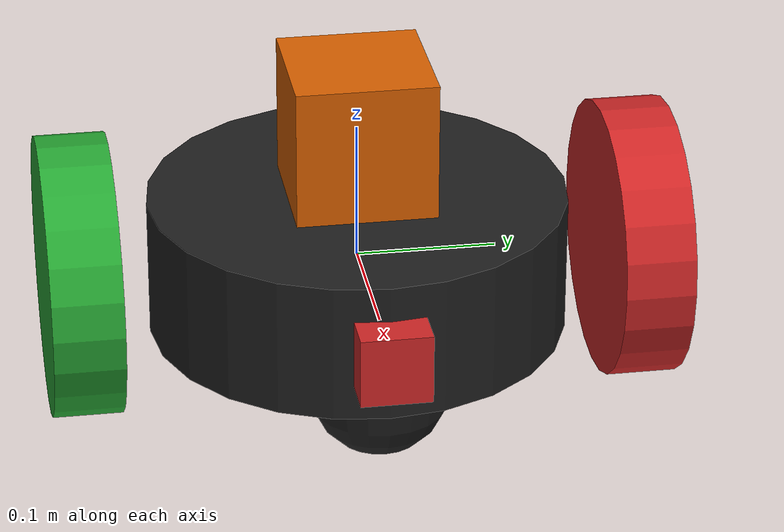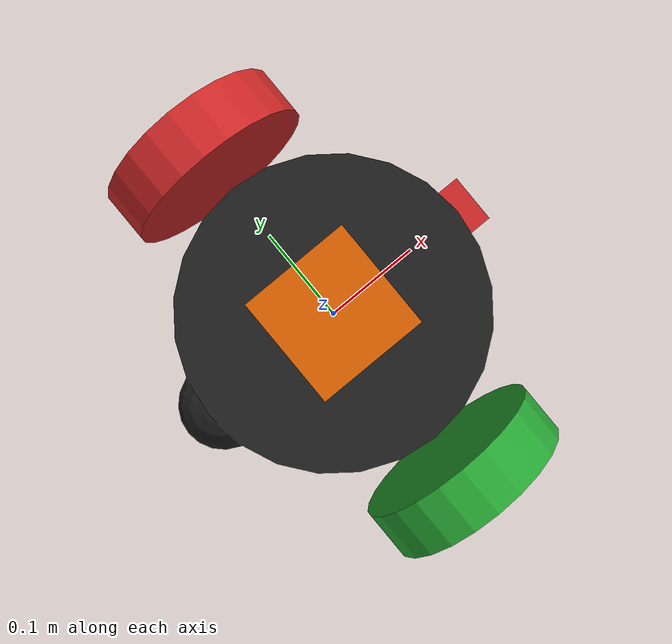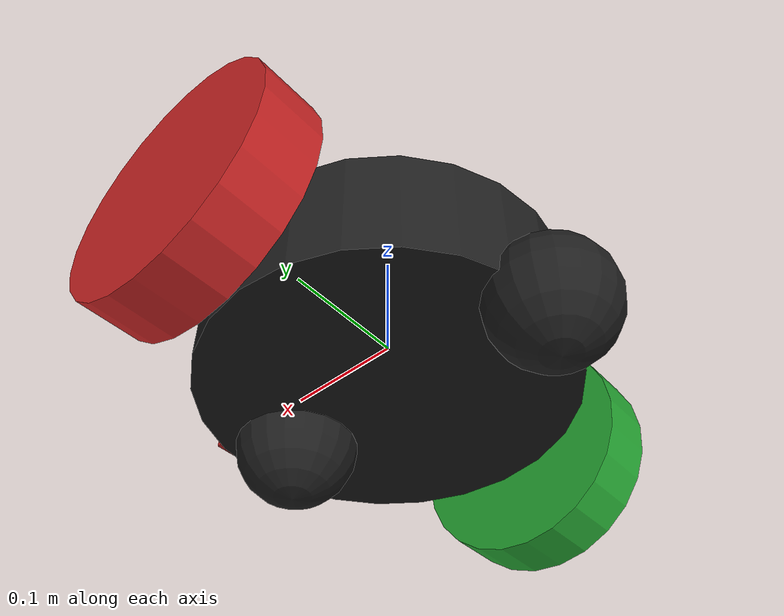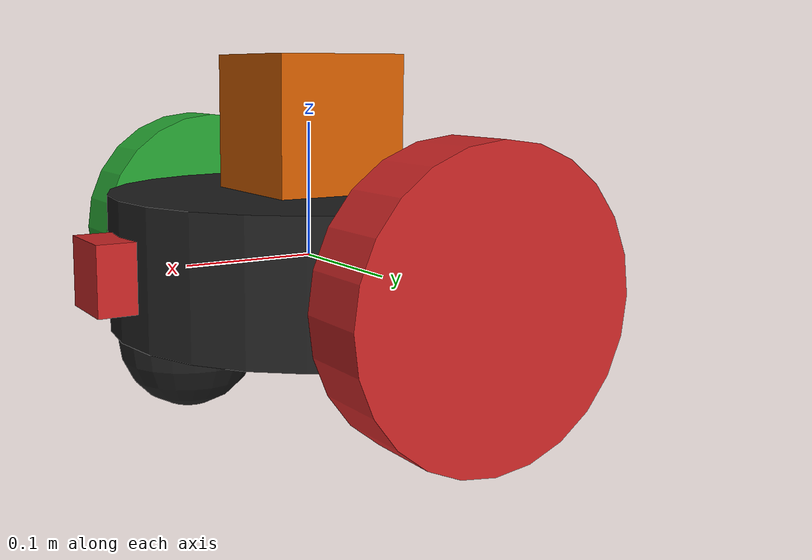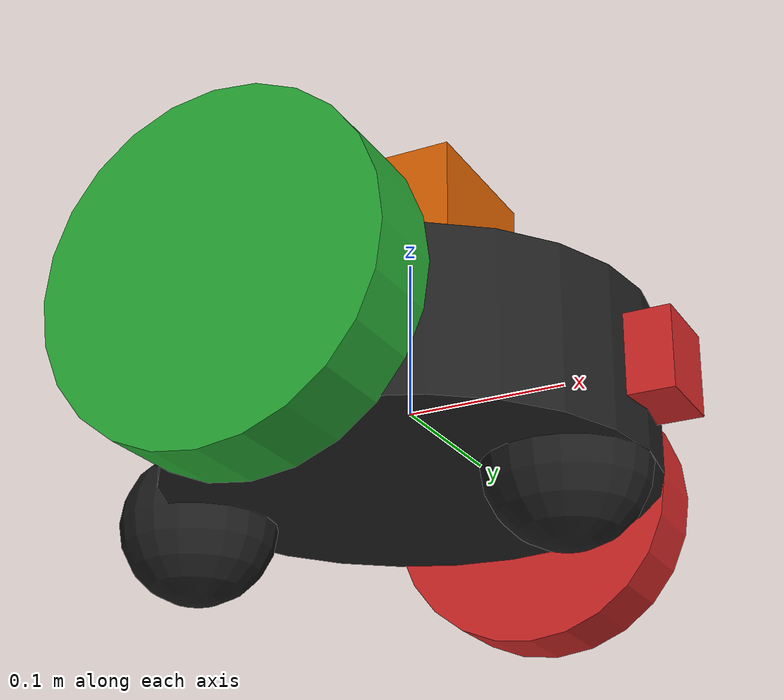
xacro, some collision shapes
<?xml version='1.0'?>

<robot name="my_robot" xmlns:xacro="http://www.ros.org/wiki/xacro">
<xacro:include filename="$(find my_robot)/urdf/my_robot.gazebo" />

  <link name="robot_footprint"></link>

  <joint name="robot_footprint_joint" type="fixed">
    <origin xyz="0 0 0" rpy="0 0 0" />
    <parent link="robot_footprint"/>
    <child link="chassis" />
  </joint>

  <link name='chassis'>
    <pose>0 0 0.1 0 0 0</pose>

    <inertial>
      <mass value="15.0"/>
      <origin xyz="0 0 0" rpy=" 0 0 0"/>
      <inertia
          ixx="0.1" ixy="0" ixz="0"
          iyy="0.1" iyz="0"
          izz="0.1"
      />
    </inertial>

    <collision name='collision'>
      <origin xyz="0 0 0" rpy=" 0 0 0"/>
      <geometry>
        <cylinder radius="0.15" length="0.1" />
      </geometry>
    </collision>

    <visual name='chassis_visual'>
      <origin xyz="0 0 0" rpy=" 0 0 0"/>
      <geometry>
        <cylinder radius="0.15" length="0.1" />
      </geometry>
    </visual>

    <collision name='back_caster_collision'>
      <origin xyz="-0.15 0 -0.05" rpy=" 0 0 0"/>
      <geometry>
        <sphere radius="0.05"/>
      </geometry>
    </collision>

    <visual name='back_caster_visual'>
      <origin xyz="-0.15 0 -0.05" rpy=" 0 0 0"/>
      <geometry>
        <sphere radius="0.05"/>
      </geometry>
    </visual>

    <collision name='front_caster_collision'>
      <origin xyz="0.1 0 -0.05" rpy=" 0 0 0"/>
      <geometry>
        <sphere radius="0.0499"/>
      </geometry>
    </collision>

    <visual name='front_caster_visual'>
      <origin xyz="0.1 0 -0.05" rpy=" 0 0 0"/>
      <geometry>
        <sphere radius="0.05"/>
      </geometry>
    </visual>

  </link>
  <!-- Front Left wheel -->
  <link name="f_left_wheel">
    <inertial>
      <mass value="5.0" />
      <origin xyz="0 0 0" rpy="0 1.5707 1.5707" />
      <inertia
        ixx="0.1" ixy="0" ixz="0"
        iyy="0.1" iyz="0"
        izz="0.1"
      />
    </inertial>

    <collision>
      <origin xyz="0 0 0" rpy="0 1.5707 1.5707" />
      <geometry>
        <cylinder radius="0.1" length="0.05" />
      </geometry>
    </collision>

    <visual>
      <origin xyz="0 0 0" rpy="0 1.5707 1.5707" />
      <geometry>
        <cylinder radius="0.1" length="0.05" />
      </geometry>
    </visual>

  </link>

  <joint type="continuous" name="left_wheel_hinge">
    <origin xyz="0 0.2 0" rpy="0 0 0"/>
    <child link="f_left_wheel"/>
    <parent link="chassis"/>
    <axis xyz="0 1 0" rpy="0 0 0"/>
    <limit effort="10000" velocity="1000"/>
    <dynamics damping="1.0" friction="1.0"/>
  </joint>

  <!-- Front Right wheel -->
  <link name="f_right_wheel">
    <pose> 0 0 0 0 0 0 </pose>
    <inertial>
      <mass value="5.0" />
      <origin xyz="0 0 0" rpy="0 1.5707 1.5707" />
      <inertia
        ixx="0.1" ixy="0" ixz="0"
        iyy="0.1" iyz="0"
        izz="0.1"
      />
    </inertial>

    <collision>
      <origin xyz="0 0 0" rpy="0 1.5707 1.5707" />
      <geometry>
        <cylinder radius="0.1" length="0.05" />
      </geometry>
    </collision>

    <visual>
      <origin xyz="0 0 0" rpy="0 1.5707 1.5707" />
      <geometry>
        <cylinder radius="0.1" length="0.05" />
      </geometry>
    </visual>

  </link>

  <joint type="continuous" name="right_wheel_hinge">
    <origin xyz="0 -0.2 0" rpy="0 0 0"/>
    <child link="f_right_wheel"/>
    <parent link="chassis"/>
    <axis xyz="0 1 0" rpy="0 0 0"/>
    <limit effort="10000" velocity="1000"/>
    <dynamics damping="1.0" friction="1.0"/>
  </joint>

  <link name="camera">
    <inertial>
      <mass value="0.1"/>
      <origin xyz="0 0 0" rpy=" 0 0 0"/>
      <inertia
          ixx="1e-6" ixy="0" ixz="0"
          iyy="1e-6" iyz="0"
          izz="1e-6"
      />
    </inertial>

    <collision name='collision'>
      <origin xyz="0 0 0" rpy=" 0 0 0"/>
      <geometry>
        <box size="0.05 0.05 0.05"/>
      </geometry>
    </collision>

    <visual name='camera_visual'>
      <origin xyz="0 0 0" rpy=" 0 0 0"/>
      <geometry>
        <box size="0.05 0.05 0.05"/>
      </geometry>
    </visual>
  </link>

  <joint type="fixed" name="camera_joint">
    <origin xyz="0.15 0 0" rpy="0 0 0"/>
    <child link="camera"/>
    <parent link="chassis"/>
    <axis xyz="0 1 0" rpy="0 0 0"/>
  </joint>

  <link name="hokuyo">
    <inertial>
      <mass value="1e-5"/>
      <origin xyz="0 0 0" rpy=" 0 0 0"/>
      <inertia
          ixx="1e-6" ixy="0" ixz="0"
          iyy="1e-6" iyz="0"
          izz="1e-6"
      />
    </inertial>

    <collision name='collision'>
      <origin xyz="0 0 0" rpy=" 0 0 0"/>
      <geometry>
        <box size="0.1 0.1 0.1"/>
      </geometry>
    </collision>

    <visual name='hokuyo_visual'>
      <origin xyz="0 0 0" rpy=" 0 0 0"/>
      <geometry>
        <mesh filename="package://my_robot/meshes/hokuyo.dae"/>
      </geometry>
    </visual>
  </link>

  <joint type="fixed" name="hokuyo_joint">
    <origin xyz="0 0 0.1" rpy="0 0 0"/>
    <child link="hokuyo"/>
    <parent link="chassis"/>
    <axis xyz="0 1 0" rpy="0 0 0"/>
  </joint>

<link name="camera_link_optical">
</link>

<joint name="camera_optical_joint" type="fixed">
  <origin xyz="0 0 0" rpy="-1.5707 0 -1.5707" />
  <parent link="camera" />
  <child link="camera_link_optical" />
</joint>

<gazebo reference="f_left_wheel">
    <material>Gazebo/Red</material>
</gazebo>
<gazebo reference="f_right_wheel">
    <material>Gazebo/Green</material>
</gazebo>
<gazebo reference="chassis">
    <material>Gazebo/Black</material>
</gazebo>
<gazebo reference="camera">
    <material>Gazebo/Red</material>
</gazebo>

</robot>
